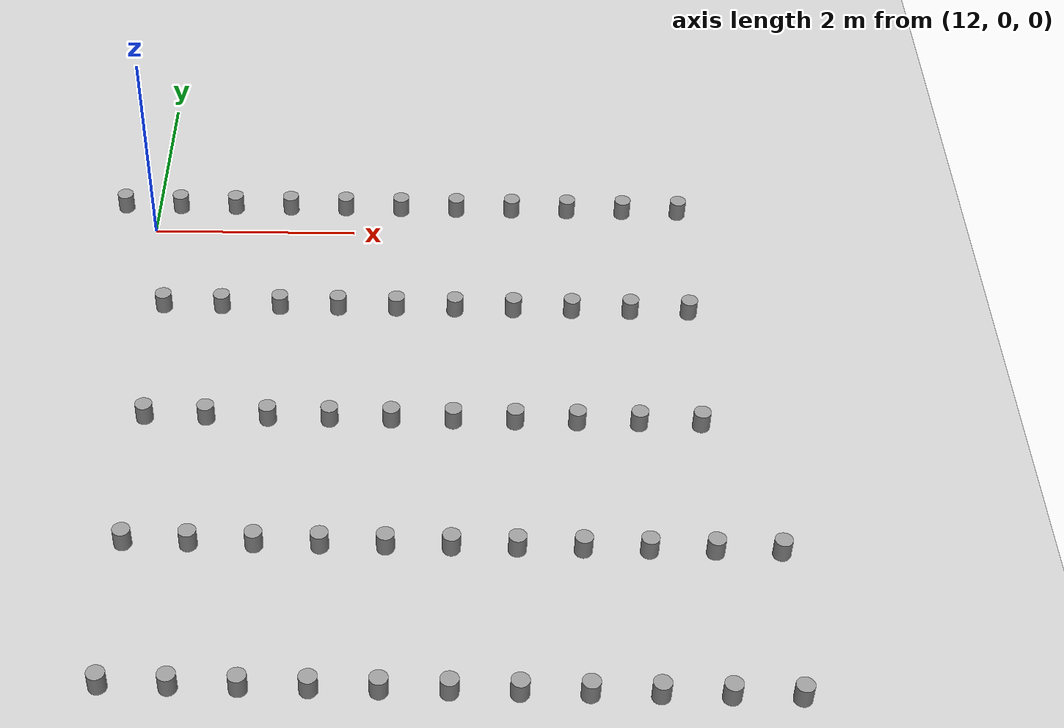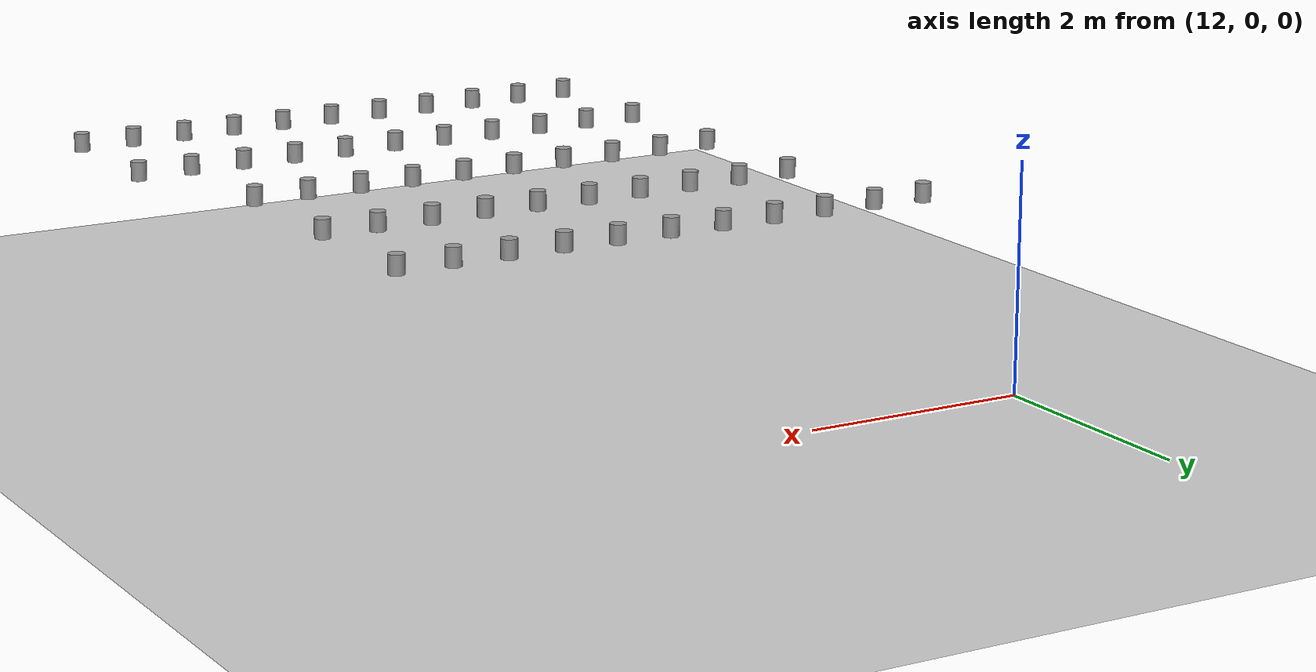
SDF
<sdf version="1.4">
 <world name="default">
  <model name="pot_54">
   <static>1</static>
   <link name="link_0">
    <collision name="collision">
     <geometry><cylinder><length>0.17</length><radius>0.07</radius></cylinder></geometry>
    </collision>
    <visual name="visual">
     <geometry><cylinder><length>0.17</length><radius>0.07</radius></cylinder></geometry>
     <material>
      <script><uri>file://media/materials/scripts/gazebo.material</uri><name>Gazebo/Grey</name></script>
      <emissive>0 0 0 1</emissive>
      <shader type="vertex"><normal_map>__default__</normal_map></shader>
      <specular>0.01 0.01 0.01 1</specular>
      <lighting>1</lighting>
      <ambient>0.1 0.1 0.1 1</ambient>
      <diffuse>0.05 0.05 0.05 1</diffuse>
     </material>
     <cast_shadows>0</cast_shadows>
    </visual>
    <pose>12.024 -1.350 1.467 0.0 0.0 0.0</pose>
   </link>
  </model>
  <model name="pot_55">
   <static>1</static>
   <link name="link_0">
    <collision name="collision">
     <geometry><cylinder><length>0.17</length><radius>0.07</radius></cylinder></geometry>
    </collision>
    <visual name="visual">
     <geometry><cylinder><length>0.17</length><radius>0.07</radius></cylinder></geometry>
     <material>
      <script><uri>file://media/materials/scripts/gazebo.material</uri><name>Gazebo/Grey</name></script>
      <emissive>0 0 0 1</emissive>
      <shader type="vertex"><normal_map>__default__</normal_map></shader>
      <specular>0.01 0.01 0.01 1</specular>
      <lighting>1</lighting>
      <ambient>0.1 0.1 0.1 1</ambient>
      <diffuse>0.05 0.05 0.05 1</diffuse>
     </material>
     <cast_shadows>0</cast_shadows>
    </visual>
    <pose>12.524 -6.750 1.467 0.0 0.0 0.0</pose>
   </link>
  </model>
  <model name="pot_56">
   <static>1</static>
   <link name="link_0">
    <collision name="collision">
     <geometry><cylinder><length>0.17</length><radius>0.07</radius></cylinder></geometry>
    </collision>
    <visual name="visual">
     <geometry><cylinder><length>0.17</length><radius>0.07</radius></cylinder></geometry>
     <material>
      <script><uri>file://media/materials/scripts/gazebo.material</uri><name>Gazebo/Grey</name></script>
      <emissive>0 0 0 1</emissive>
      <shader type="vertex"><normal_map>__default__</normal_map></shader>
      <specular>0.01 0.01 0.01 1</specular>
      <lighting>1</lighting>
      <ambient>0.1 0.1 0.1 1</ambient>
      <diffuse>0.05 0.05 0.05 1</diffuse>
     </material>
     <cast_shadows>0</cast_shadows>
    </visual>
    <pose>12.524 -5.400 1.467 0.0 0.0 0.0</pose>
   </link>
  </model>
  <model name="pot_57">
   <static>1</static>
   <link name="link_0">
    <collision name="collision">
     <geometry><cylinder><length>0.17</length><radius>0.07</radius></cylinder></geometry>
    </collision>
    <visual name="visual">
     <geometry><cylinder><length>0.17</length><radius>0.07</radius></cylinder></geometry>
     <material>
      <script><uri>file://media/materials/scripts/gazebo.material</uri><name>Gazebo/Grey</name></script>
      <emissive>0 0 0 1</emissive>
      <shader type="vertex"><normal_map>__default__</normal_map></shader>
      <specular>0.01 0.01 0.01 1</specular>
      <lighting>1</lighting>
      <ambient>0.1 0.1 0.1 1</ambient>
      <diffuse>0.05 0.05 0.05 1</diffuse>
     </material>
     <cast_shadows>0</cast_shadows>
    </visual>
    <pose>12.524 -4.050 1.467 0.0 0.0 0.0</pose>
   </link>
  </model>
  <model name="pot_58">
   <static>1</static>
   <link name="link_0">
    <collision name="collision">
     <geometry><cylinder><length>0.17</length><radius>0.07</radius></cylinder></geometry>
    </collision>
    <visual name="visual">
     <geometry><cylinder><length>0.17</length><radius>0.07</radius></cylinder></geometry>
     <material>
      <script><uri>file://media/materials/scripts/gazebo.material</uri><name>Gazebo/Grey</name></script>
      <emissive>0 0 0 1</emissive>
      <shader type="vertex"><normal_map>__default__</normal_map></shader>
      <specular>0.01 0.01 0.01 1</specular>
      <lighting>1</lighting>
      <ambient>0.1 0.1 0.1 1</ambient>
      <diffuse>0.05 0.05 0.05 1</diffuse>
     </material>
     <cast_shadows>0</cast_shadows>
    </visual>
    <pose>12.524 -2.700 1.467 0.0 0.0 0.0</pose>
   </link>
  </model>
  <model name="pot_59">
   <static>1</static>
   <link name="link_0">
    <collision name="collision">
     <geometry><cylinder><length>0.17</length><radius>0.07</radius></cylinder></geometry>
    </collision>
    <visual name="visual">
     <geometry><cylinder><length>0.17</length><radius>0.07</radius></cylinder></geometry>
     <material>
      <script><uri>file://media/materials/scripts/gazebo.material</uri><name>Gazebo/Grey</name></script>
      <emissive>0 0 0 1</emissive>
      <shader type="vertex"><normal_map>__default__</normal_map></shader>
      <specular>0.01 0.01 0.01 1</specular>
      <lighting>1</lighting>
      <ambient>0.1 0.1 0.1 1</ambient>
      <diffuse>0.05 0.05 0.05 1</diffuse>
     </material>
     <cast_shadows>0</cast_shadows>
    </visual>
    <pose>12.524 -1.350 1.467 0.0 0.0 0.0</pose>
   </link>
  </model>
  <model name="pot_60">
   <static>1</static>
   <link name="link_0">
    <collision name="collision">
     <geometry><cylinder><length>0.17</length><radius>0.07</radius></cylinder></geometry>
    </collision>
    <visual name="visual">
     <geometry><cylinder><length>0.17</length><radius>0.07</radius></cylinder></geometry>
     <material>
      <script><uri>file://media/materials/scripts/gazebo.material</uri><name>Gazebo/Grey</name></script>
      <emissive>0 0 0 1</emissive>
      <shader type="vertex"><normal_map>__default__</normal_map></shader>
      <specular>0.01 0.01 0.01 1</specular>
      <lighting>1</lighting>
      <ambient>0.1 0.1 0.1 1</ambient>
      <diffuse>0.05 0.05 0.05 1</diffuse>
     </material>
     <cast_shadows>0</cast_shadows>
    </visual>
    <pose>13.024 -6.750 1.467 0.0 0.0 0.0</pose>
   </link>
  </model>
  <model name="pot_61">
   <static>1</static>
   <link name="link_0">
    <collision name="collision">
     <geometry><cylinder><length>0.17</length><radius>0.07</radius></cylinder></geometry>
    </collision>
    <visual name="visual">
     <geometry><cylinder><length>0.17</length><radius>0.07</radius></cylinder></geometry>
     <material>
      <script><uri>file://media/materials/scripts/gazebo.material</uri><name>Gazebo/Grey</name></script>
      <emissive>0 0 0 1</emissive>
      <shader type="vertex"><normal_map>__default__</normal_map></shader>
      <specular>0.01 0.01 0.01 1</specular>
      <lighting>1</lighting>
      <ambient>0.1 0.1 0.1 1</ambient>
      <diffuse>0.05 0.05 0.05 1</diffuse>
     </material>
     <cast_shadows>0</cast_shadows>
    </visual>
    <pose>13.024 -5.400 1.467 0.0 0.0 0.0</pose>
   </link>
  </model>
  <model name="pot_62">
   <static>1</static>
   <link name="link_0">
    <collision name="collision">
     <geometry><cylinder><length>0.17</length><radius>0.07</radius></cylinder></geometry>
    </collision>
    <visual name="visual">
     <geometry><cylinder><length>0.17</length><radius>0.07</radius></cylinder></geometry>
     <material>
      <script><uri>file://media/materials/scripts/gazebo.material</uri><name>Gazebo/Grey</name></script>
      <emissive>0 0 0 1</emissive>
      <shader type="vertex"><normal_map>__default__</normal_map></shader>
      <specular>0.01 0.01 0.01 1</specular>
      <lighting>1</lighting>
      <ambient>0.1 0.1 0.1 1</ambient>
      <diffuse>0.05 0.05 0.05 1</diffuse>
     </material>
     <cast_shadows>0</cast_shadows>
    </visual>
    <pose>13.024 -4.050 1.467 0.0 0.0 0.0</pose>
   </link>
  </model>
  <model name="pot_63">
   <static>1</static>
   <link name="link_0">
    <collision name="collision">
     <geometry><cylinder><length>0.17</length><radius>0.07</radius></cylinder></geometry>
    </collision>
    <visual name="visual">
     <geometry><cylinder><length>0.17</length><radius>0.07</radius></cylinder></geometry>
     <material>
      <script><uri>file://media/materials/scripts/gazebo.material</uri><name>Gazebo/Grey</name></script>
      <emissive>0 0 0 1</emissive>
      <shader type="vertex"><normal_map>__default__</normal_map></shader>
      <specular>0.01 0.01 0.01 1</specular>
      <lighting>1</lighting>
      <ambient>0.1 0.1 0.1 1</ambient>
      <diffuse>0.05 0.05 0.05 1</diffuse>
     </material>
     <cast_shadows>0</cast_shadows>
    </visual>
    <pose>13.024 -2.700 1.467 0.0 0.0 0.0</pose>
   </link>
  </model>
  <model name="pot_64">
   <static>1</static>
   <link name="link_0">
    <collision name="collision">
     <geometry><cylinder><length>0.17</length><radius>0.07</radius></cylinder></geometry>
    </collision>
    <visual name="visual">
     <geometry><cylinder><length>0.17</length><radius>0.07</radius></cylinder></geometry>
     <material>
      <script><uri>file://media/materials/scripts/gazebo.material</uri><name>Gazebo/Grey</name></script>
      <emissive>0 0 0 1</emissive>
      <shader type="vertex"><normal_map>__default__</normal_map></shader>
      <specular>0.01 0.01 0.01 1</specular>
      <lighting>1</lighting>
      <ambient>0.1 0.1 0.1 1</ambient>
      <diffuse>0.05 0.05 0.05 1</diffuse>
     </material>
     <cast_shadows>0</cast_shadows>
    </visual>
    <pose>13.024 -1.350 1.467 0.0 0.0 0.0</pose>
   </link>
  </model>
  <model name="pot_65">
   <static>1</static>
   <link name="link_0">
    <collision name="collision">
     <geometry><cylinder><length>0.17</length><radius>0.07</radius></cylinder></geometry>
    </collision>
    <visual name="visual">
     <geometry><cylinder><length>0.17</length><radius>0.07</radius></cylinder></geometry>
     <material>
      <script><uri>file://media/materials/scripts/gazebo.material</uri><name>Gazebo/Grey</name></script>
      <emissive>0 0 0 1</emissive>
      <shader type="vertex"><normal_map>__default__</normal_map></shader>
      <specular>0.01 0.01 0.01 1</specular>
      <lighting>1</lighting>
      <ambient>0.1 0.1 0.1 1</ambient>
      <diffuse>0.05 0.05 0.05 1</diffuse>
     </material>
     <cast_shadows>0</cast_shadows>
    </visual>
    <pose>13.524 -6.750 1.467 0.0 0.0 0.0</pose>
   </link>
  </model>
  <model name="pot_66">
   <static>1</static>
   <link name="link_0">
    <collision name="collision">
     <geometry><cylinder><length>0.17</length><radius>0.07</radius></cylinder></geometry>
    </collision>
    <visual name="visual">
     <geometry><cylinder><length>0.17</length><radius>0.07</radius></cylinder></geometry>
     <material>
      <script><uri>file://media/materials/scripts/gazebo.material</uri><name>Gazebo/Grey</name></script>
      <emissive>0 0 0 1</emissive>
      <shader type="vertex"><normal_map>__default__</normal_map></shader>
      <specular>0.01 0.01 0.01 1</specular>
      <lighting>1</lighting>
      <ambient>0.1 0.1 0.1 1</ambient>
      <diffuse>0.05 0.05 0.05 1</diffuse>
     </material>
     <cast_shadows>0</cast_shadows>
    </visual>
    <pose>13.524 -5.400 1.467 0.0 0.0 0.0</pose>
   </link>
  </model>
  <model name="pot_67">
   <static>1</static>
   <link name="link_0">
    <collision name="collision">
     <geometry><cylinder><length>0.17</length><radius>0.07</radius></cylinder></geometry>
    </collision>
    <visual name="visual">
     <geometry><cylinder><length>0.17</length><radius>0.07</radius></cylinder></geometry>
     <material>
      <script><uri>file://media/materials/scripts/gazebo.material</uri><name>Gazebo/Grey</name></script>
      <emissive>0 0 0 1</emissive>
      <shader type="vertex"><normal_map>__default__</normal_map></shader>
      <specular>0.01 0.01 0.01 1</specular>
      <lighting>1</lighting>
      <ambient>0.1 0.1 0.1 1</ambient>
      <diffuse>0.05 0.05 0.05 1</diffuse>
     </material>
     <cast_shadows>0</cast_shadows>
    </visual>
    <pose>13.524 -4.050 1.467 0.0 0.0 0.0</pose>
   </link>
  </model>
  <model name="pot_68">
   <static>1</static>
   <link name="link_0">
    <collision name="collision">
     <geometry><cylinder><length>0.17</length><radius>0.07</radius></cylinder></geometry>
    </collision>
    <visual name="visual">
     <geometry><cylinder><length>0.17</length><radius>0.07</radius></cylinder></geometry>
     <material>
      <script><uri>file://media/materials/scripts/gazebo.material</uri><name>Gazebo/Grey</name></script>
      <emissive>0 0 0 1</emissive>
      <shader type="vertex"><normal_map>__default__</normal_map></shader>
      <specular>0.01 0.01 0.01 1</specular>
      <lighting>1</lighting>
      <ambient>0.1 0.1 0.1 1</ambient>
      <diffuse>0.05 0.05 0.05 1</diffuse>
     </material>
     <cast_shadows>0</cast_shadows>
    </visual>
    <pose>13.524 -2.700 1.467 0.0 0.0 0.0</pose>
   </link>
  </model>
  <model name="pot_69">
   <static>1</static>
   <link name="link_0">
    <collision name="collision">
     <geometry><cylinder><length>0.17</length><radius>0.07</radius></cylinder></geometry>
    </collision>
    <visual name="visual">
     <geometry><cylinder><length>0.17</length><radius>0.07</radius></cylinder></geometry>
     <material>
      <script><uri>file://media/materials/scripts/gazebo.material</uri><name>Gazebo/Grey</name></script>
      <emissive>0 0 0 1</emissive>
      <shader type="vertex"><normal_map>__default__</normal_map></shader>
      <specular>0.01 0.01 0.01 1</specular>
      <lighting>1</lighting>
      <ambient>0.1 0.1 0.1 1</ambient>
      <diffuse>0.05 0.05 0.05 1</diffuse>
     </material>
     <cast_shadows>0</cast_shadows>
    </visual>
    <pose>13.524 -1.350 1.467 0.0 0.0 0.0</pose>
   </link>
  </model>
  <model name="pot_70">
   <static>1</static>
   <link name="link_0">
    <collision name="collision">
     <geometry><cylinder><length>0.17</length><radius>0.07</radius></cylinder></geometry>
    </collision>
    <visual name="visual">
     <geometry><cylinder><length>0.17</length><radius>0.07</radius></cylinder></geometry>
     <material>
      <script><uri>file://media/materials/scripts/gazebo.material</uri><name>Gazebo/Grey</name></script>
      <emissive>0 0 0 1</emissive>
      <shader type="vertex"><normal_map>__default__</normal_map></shader>
      <specular>0.01 0.01 0.01 1</specular>
      <lighting>1</lighting>
      <ambient>0.1 0.1 0.1 1</ambient>
      <diffuse>0.05 0.05 0.05 1</diffuse>
     </material>
     <cast_shadows>0</cast_shadows>
    </visual>
    <pose>14.024 -6.750 1.467 0.0 0.0 0.0</pose>
   </link>
  </model>
  <model name="pot_71">
   <static>1</static>
   <link name="link_0">
    <collision name="collision">
     <geometry><cylinder><length>0.17</length><radius>0.07</radius></cylinder></geometry>
    </collision>
    <visual name="visual">
     <geometry><cylinder><length>0.17</length><radius>0.07</radius></cylinder></geometry>
     <material>
      <script><uri>file://media/materials/scripts/gazebo.material</uri><name>Gazebo/Grey</name></script>
      <emissive>0 0 0 1</emissive>
      <shader type="vertex"><normal_map>__default__</normal_map></shader>
      <specular>0.01 0.01 0.01 1</specular>
      <lighting>1</lighting>
      <ambient>0.1 0.1 0.1 1</ambient>
      <diffuse>0.05 0.05 0.05 1</diffuse>
     </material>
     <cast_shadows>0</cast_shadows>
    </visual>
    <pose>14.024 -5.400 1.467 0.0 0.0 0.0</pose>
   </link>
  </model>
  <model name="pot_72">
   <static>1</static>
   <link name="link_0">
    <collision name="collision">
     <geometry><cylinder><length>0.17</length><radius>0.07</radius></cylinder></geometry>
    </collision>
    <visual name="visual">
     <geometry><cylinder><length>0.17</length><radius>0.07</radius></cylinder></geometry>
     <material>
      <script><uri>file://media/materials/scripts/gazebo.material</uri><name>Gazebo/Grey</name></script>
      <emissive>0 0 0 1</emissive>
      <shader type="vertex"><normal_map>__default__</normal_map></shader>
      <specular>0.01 0.01 0.01 1</specular>
      <lighting>1</lighting>
      <ambient>0.1 0.1 0.1 1</ambient>
      <diffuse>0.05 0.05 0.05 1</diffuse>
     </material>
     <cast_shadows>0</cast_shadows>
    </visual>
    <pose>14.024 -4.050 1.467 0.0 0.0 0.0</pose>
   </link>
  </model>
  <model name="pot_73">
   <static>1</static>
   <link name="link_0">
    <collision name="collision">
     <geometry><cylinder><length>0.17</length><radius>0.07</radius></cylinder></geometry>
    </collision>
    <visual name="visual">
     <geometry><cylinder><length>0.17</length><radius>0.07</radius></cylinder></geometry>
     <material>
      <script><uri>file://media/materials/scripts/gazebo.material</uri><name>Gazebo/Grey</name></script>
      <emissive>0 0 0 1</emissive>
      <shader type="vertex"><normal_map>__default__</normal_map></shader>
      <specular>0.01 0.01 0.01 1</specular>
      <lighting>1</lighting>
      <ambient>0.1 0.1 0.1 1</ambient>
      <diffuse>0.05 0.05 0.05 1</diffuse>
     </material>
     <cast_shadows>0</cast_shadows>
    </visual>
    <pose>14.024 -2.700 1.467 0.0 0.0 0.0</pose>
   </link>
  </model>
  <model name="pot_74">
   <static>1</static>
   <link name="link_0">
    <collision name="collision">
     <geometry><cylinder><length>0.17</length><radius>0.07</radius></cylinder></geometry>
    </collision>
    <visual name="visual">
     <geometry><cylinder><length>0.17</length><radius>0.07</radius></cylinder></geometry>
     <material>
      <script><uri>file://media/materials/scripts/gazebo.material</uri><name>Gazebo/Grey</name></script>
      <emissive>0 0 0 1</emissive>
      <shader type="vertex"><normal_map>__default__</normal_map></shader>
      <specular>0.01 0.01 0.01 1</specular>
      <lighting>1</lighting>
      <ambient>0.1 0.1 0.1 1</ambient>
      <diffuse>0.05 0.05 0.05 1</diffuse>
     </material>
     <cast_shadows>0</cast_shadows>
    </visual>
    <pose>14.024 -1.350 1.467 0.0 0.0 0.0</pose>
   </link>
  </model>
  <model name="pot_75">
   <static>1</static>
   <link name="link_0">
    <collision name="collision">
     <geometry><cylinder><length>0.17</length><radius>0.07</radius></cylinder></geometry>
    </collision>
    <visual name="visual">
     <geometry><cylinder><length>0.17</length><radius>0.07</radius></cylinder></geometry>
     <material>
      <script><uri>file://media/materials/scripts/gazebo.material</uri><name>Gazebo/Grey</name></script>
      <emissive>0 0 0 1</emissive>
      <shader type="vertex"><normal_map>__default__</normal_map></shader>
      <specular>0.01 0.01 0.01 1</specular>
      <lighting>1</lighting>
      <ambient>0.1 0.1 0.1 1</ambient>
      <diffuse>0.05 0.05 0.05 1</diffuse>
     </material>
     <cast_shadows>0</cast_shadows>
    </visual>
    <pose>14.524 -6.750 1.467 0.0 0.0 0.0</pose>
   </link>
  </model>
  <model name="pot_76">
   <static>1</static>
   <link name="link_0">
    <collision name="collision">
     <geometry><cylinder><length>0.17</length><radius>0.07</radius></cylinder></geometry>
    </collision>
    <visual name="visual">
     <geometry><cylinder><length>0.17</length><radius>0.07</radius></cylinder></geometry>
     <material>
      <script><uri>file://media/materials/scripts/gazebo.material</uri><name>Gazebo/Grey</name></script>
      <emissive>0 0 0 1</emissive>
      <shader type="vertex"><normal_map>__default__</normal_map></shader>
      <specular>0.01 0.01 0.01 1</specular>
      <lighting>1</lighting>
      <ambient>0.1 0.1 0.1 1</ambient>
      <diffuse>0.05 0.05 0.05 1</diffuse>
     </material>
     <cast_shadows>0</cast_shadows>
    </visual>
    <pose>14.524 -5.400 1.467 0.0 0.0 0.0</pose>
   </link>
  </model>
  <model name="pot_77">
   <static>1</static>
   <link name="link_0">
    <collision name="collision">
     <geometry><cylinder><length>0.17</length><radius>0.07</radius></cylinder></geometry>
    </collision>
    <visual name="visual">
     <geometry><cylinder><length>0.17</length><radius>0.07</radius></cylinder></geometry>
     <material>
      <script><uri>file://media/materials/scripts/gazebo.material</uri><name>Gazebo/Grey</name></script>
      <emissive>0 0 0 1</emissive>
      <shader type="vertex"><normal_map>__default__</normal_map></shader>
      <specular>0.01 0.01 0.01 1</specular>
      <lighting>1</lighting>
      <ambient>0.1 0.1 0.1 1</ambient>
      <diffuse>0.05 0.05 0.05 1</diffuse>
     </material>
     <cast_shadows>0</cast_shadows>
    </visual>
    <pose>14.524 -4.050 1.467 0.0 0.0 0.0</pose>
   </link>
  </model>
  <model name="pot_78">
   <static>1</static>
   <link name="link_0">
    <collision name="collision">
     <geometry><cylinder><length>0.17</length><radius>0.07</radius></cylinder></geometry>
    </collision>
    <visual name="visual">
     <geometry><cylinder><length>0.17</length><radius>0.07</radius></cylinder></geometry>
     <material>
      <script><uri>file://media/materials/scripts/gazebo.material</uri><name>Gazebo/Grey</name></script>
      <emissive>0 0 0 1</emissive>
      <shader type="vertex"><normal_map>__default__</normal_map></shader>
      <specular>0.01 0.01 0.01 1</specular>
      <lighting>1</lighting>
      <ambient>0.1 0.1 0.1 1</ambient>
      <diffuse>0.05 0.05 0.05 1</diffuse>
     </material>
     <cast_shadows>0</cast_shadows>
    </visual>
    <pose>14.524 -2.700 1.467 0.0 0.0 0.0</pose>
   </link>
  </model>
  <model name="pot_79">
   <static>1</static>
   <link name="link_0">
    <collision name="collision">
     <geometry><cylinder><length>0.17</length><radius>0.07</radius></cylinder></geometry>
    </collision>
    <visual name="visual">
     <geometry><cylinder><length>0.17</length><radius>0.07</radius></cylinder></geometry>
     <material>
      <script><uri>file://media/materials/scripts/gazebo.material</uri><name>Gazebo/Grey</name></script>
      <emissive>0 0 0 1</emissive>
      <shader type="vertex"><normal_map>__default__</normal_map></shader>
      <specular>0.01 0.01 0.01 1</specular>
      <lighting>1</lighting>
      <ambient>0.1 0.1 0.1 1</ambient>
      <diffuse>0.05 0.05 0.05 1</diffuse>
     </material>
     <cast_shadows>0</cast_shadows>
    </visual>
    <pose>14.524 -1.350 1.467 0.0 0.0 0.0</pose>
   </link>
  </model>
  <model name="pot_80">
   <static>1</static>
   <link name="link_0">
    <collision name="collision">
     <geometry><cylinder><length>0.17</length><radius>0.07</radius></cylinder></geometry>
    </collision>
    <visual name="visual">
     <geometry><cylinder><length>0.17</length><radius>0.07</radius></cylinder></geometry>
     <material>
      <script><uri>file://media/materials/scripts/gazebo.material</uri><name>Gazebo/Grey</name></script>
      <emissive>0 0 0 1</emissive>
      <shader type="vertex"><normal_map>__default__</normal_map></shader>
      <specular>0.01 0.01 0.01 1</specular>
      <lighting>1</lighting>
      <ambient>0.1 0.1 0.1 1</ambient>
      <diffuse>0.05 0.05 0.05 1</diffuse>
     </material>
     <cast_shadows>0</cast_shadows>
    </visual>
    <pose>15.024 -6.750 1.467 0.0 0.0 0.0</pose>
   </link>
  </model>
  <model name="pot_81">
   <static>1</static>
   <link name="link_0">
    <collision name="collision">
     <geometry><cylinder><length>0.17</length><radius>0.07</radius></cylinder></geometry>
    </collision>
    <visual name="visual">
     <geometry><cylinder><length>0.17</length><radius>0.07</radius></cylinder></geometry>
     <material>
      <script><uri>file://media/materials/scripts/gazebo.material</uri><name>Gazebo/Grey</name></script>
      <emissive>0 0 0 1</emissive>
      <shader type="vertex"><normal_map>__default__</normal_map></shader>
      <specular>0.01 0.01 0.01 1</specular>
      <lighting>1</lighting>
      <ambient>0.1 0.1 0.1 1</ambient>
      <diffuse>0.05 0.05 0.05 1</diffuse>
     </material>
     <cast_shadows>0</cast_shadows>
    </visual>
    <pose>15.024 -5.400 1.467 0.0 0.0 0.0</pose>
   </link>
  </model>
  <model name="pot_82">
   <static>1</static>
   <link name="link_0">
    <collision name="collision">
     <geometry><cylinder><length>0.17</length><radius>0.07</radius></cylinder></geometry>
    </collision>
    <visual name="visual">
     <geometry><cylinder><length>0.17</length><radius>0.07</radius></cylinder></geometry>
     <material>
      <script><uri>file://media/materials/scripts/gazebo.material</uri><name>Gazebo/Grey</name></script>
      <emissive>0 0 0 1</emissive>
      <shader type="vertex"><normal_map>__default__</normal_map></shader>
      <specular>0.01 0.01 0.01 1</specular>
      <lighting>1</lighting>
      <ambient>0.1 0.1 0.1 1</ambient>
      <diffuse>0.05 0.05 0.05 1</diffuse>
     </material>
     <cast_shadows>0</cast_shadows>
    </visual>
    <pose>15.024 -4.050 1.467 0.0 0.0 0.0</pose>
   </link>
  </model>
  <model name="pot_83">
   <static>1</static>
   <link name="link_0">
    <collision name="collision">
     <geometry><cylinder><length>0.17</length><radius>0.07</radius></cylinder></geometry>
    </collision>
    <visual name="visual">
     <geometry><cylinder><length>0.17</length><radius>0.07</radius></cylinder></geometry>
     <material>
      <script><uri>file://media/materials/scripts/gazebo.material</uri><name>Gazebo/Grey</name></script>
      <emissive>0 0 0 1</emissive>
      <shader type="vertex"><normal_map>__default__</normal_map></shader>
      <specular>0.01 0.01 0.01 1</specular>
      <lighting>1</lighting>
      <ambient>0.1 0.1 0.1 1</ambient>
      <diffuse>0.05 0.05 0.05 1</diffuse>
     </material>
     <cast_shadows>0</cast_shadows>
    </visual>
    <pose>15.024 -2.700 1.467 0.0 0.0 0.0</pose>
   </link>
  </model>
  <model name="pot_84">
   <static>1</static>
   <link name="link_0">
    <collision name="collision">
     <geometry><cylinder><length>0.17</length><radius>0.07</radius></cylinder></geometry>
    </collision>
    <visual name="visual">
     <geometry><cylinder><length>0.17</length><radius>0.07</radius></cylinder></geometry>
     <material>
      <script><uri>file://media/materials/scripts/gazebo.material</uri><name>Gazebo/Grey</name></script>
      <emissive>0 0 0 1</emissive>
      <shader type="vertex"><normal_map>__default__</normal_map></shader>
      <specular>0.01 0.01 0.01 1</specular>
      <lighting>1</lighting>
      <ambient>0.1 0.1 0.1 1</ambient>
      <diffuse>0.05 0.05 0.05 1</diffuse>
     </material>
     <cast_shadows>0</cast_shadows>
    </visual>
    <pose>15.024 -1.350 1.467 0.0 0.0 0.0</pose>
   </link>
  </model>
  <model name="pot_85">
   <static>1</static>
   <link name="link_0">
    <collision name="collision">
     <geometry><cylinder><length>0.17</length><radius>0.07</radius></cylinder></geometry>
    </collision>
    <visual name="visual">
     <geometry><cylinder><length>0.17</length><radius>0.07</radius></cylinder></geometry>
     <material>
      <script><uri>file://media/materials/scripts/gazebo.material</uri><name>Gazebo/Grey</name></script>
      <emissive>0 0 0 1</emissive>
      <shader type="vertex"><normal_map>__default__</normal_map></shader>
      <specular>0.01 0.01 0.01 1</specular>
      <lighting>1</lighting>
      <ambient>0.1 0.1 0.1 1</ambient>
      <diffuse>0.05 0.05 0.05 1</diffuse>
     </material>
     <cast_shadows>0</cast_shadows>
    </visual>
    <pose>15.524 -6.750 1.467 0.0 0.0 0.0</pose>
   </link>
  </model>
  <model name="pot_86">
   <static>1</static>
   <link name="link_0">
    <collision name="collision">
     <geometry><cylinder><length>0.17</length><radius>0.07</radius></cylinder></geometry>
    </collision>
    <visual name="visual">
     <geometry><cylinder><length>0.17</length><radius>0.07</radius></cylinder></geometry>
     <material>
      <script><uri>file://media/materials/scripts/gazebo.material</uri><name>Gazebo/Grey</name></script>
      <emissive>0 0 0 1</emissive>
      <shader type="vertex"><normal_map>__default__</normal_map></shader>
      <specular>0.01 0.01 0.01 1</specular>
      <lighting>1</lighting>
      <ambient>0.1 0.1 0.1 1</ambient>
      <diffuse>0.05 0.05 0.05 1</diffuse>
     </material>
     <cast_shadows>0</cast_shadows>
    </visual>
    <pose>15.524 -5.400 1.467 0.0 0.0 0.0</pose>
   </link>
  </model>
  <model name="pot_87">
   <static>1</static>
   <link name="link_0">
    <collision name="collision">
     <geometry><cylinder><length>0.17</length><radius>0.07</radius></cylinder></geometry>
    </collision>
    <visual name="visual">
     <geometry><cylinder><length>0.17</length><radius>0.07</radius></cylinder></geometry>
     <material>
      <script><uri>file://media/materials/scripts/gazebo.material</uri><name>Gazebo/Grey</name></script>
      <emissive>0 0 0 1</emissive>
      <shader type="vertex"><normal_map>__default__</normal_map></shader>
      <specular>0.01 0.01 0.01 1</specular>
      <lighting>1</lighting>
      <ambient>0.1 0.1 0.1 1</ambient>
      <diffuse>0.05 0.05 0.05 1</diffuse>
     </material>
     <cast_shadows>0</cast_shadows>
    </visual>
    <pose>15.524 -4.050 1.467 0.0 0.0 0.0</pose>
   </link>
  </model>
  <model name="pot_88">
   <static>1</static>
   <link name="link_0">
    <collision name="collision">
     <geometry><cylinder><length>0.17</length><radius>0.07</radius></cylinder></geometry>
    </collision>
    <visual name="visual">
     <geometry><cylinder><length>0.17</length><radius>0.07</radius></cylinder></geometry>
     <material>
      <script><uri>file://media/materials/scripts/gazebo.material</uri><name>Gazebo/Grey</name></script>
      <emissive>0 0 0 1</emissive>
      <shader type="vertex"><normal_map>__default__</normal_map></shader>
      <specular>0.01 0.01 0.01 1</specular>
      <lighting>1</lighting>
      <ambient>0.1 0.1 0.1 1</ambient>
      <diffuse>0.05 0.05 0.05 1</diffuse>
     </material>
     <cast_shadows>0</cast_shadows>
    </visual>
    <pose>15.524 -2.700 1.467 0.0 0.0 0.0</pose>
   </link>
  </model>
  <model name="pot_89">
   <static>1</static>
   <link name="link_0">
    <collision name="collision">
     <geometry><cylinder><length>0.17</length><radius>0.07</radius></cylinder></geometry>
    </collision>
    <visual name="visual">
     <geometry><cylinder><length>0.17</length><radius>0.07</radius></cylinder></geometry>
     <material>
      <script><uri>file://media/materials/scripts/gazebo.material</uri><name>Gazebo/Grey</name></script>
      <emissive>0 0 0 1</emissive>
      <shader type="vertex"><normal_map>__default__</normal_map></shader>
      <specular>0.01 0.01 0.01 1</specular>
      <lighting>1</lighting>
      <ambient>0.1 0.1 0.1 1</ambient>
      <diffuse>0.05 0.05 0.05 1</diffuse>
     </material>
     <cast_shadows>0</cast_shadows>
    </visual>
    <pose>15.524 -1.350 1.467 0.0 0.0 0.0</pose>
   </link>
  </model>
  <model name="pot_90">
   <static>1</static>
   <link name="link_0">
    <collision name="collision">
     <geometry><cylinder><length>0.17</length><radius>0.07</radius></cylinder></geometry>
    </collision>
    <visual name="visual">
     <geometry><cylinder><length>0.17</length><radius>0.07</radius></cylinder></geometry>
     <material>
      <script><uri>file://media/materials/scripts/gazebo.material</uri><name>Gazebo/Grey</name></script>
      <emissive>0 0 0 1</emissive>
      <shader type="vertex"><normal_map>__default__</normal_map></shader>
      <specular>0.01 0.01 0.01 1</specular>
      <lighting>1</lighting>
      <ambient>0.1 0.1 0.1 1</ambient>
      <diffuse>0.05 0.05 0.05 1</diffuse>
     </material>
     <cast_shadows>0</cast_shadows>
    </visual>
    <pose>16.024 -6.750 1.467 0.0 0.0 0.0</pose>
   </link>
  </model>
  <model name="pot_91">
   <static>1</static>
   <link name="link_0">
    <collision name="collision">
     <geometry><cylinder><length>0.17</length><radius>0.07</radius></cylinder></geometry>
    </collision>
    <visual name="visual">
     <geometry><cylinder><length>0.17</length><radius>0.07</radius></cylinder></geometry>
     <material>
      <script><uri>file://media/materials/scripts/gazebo.material</uri><name>Gazebo/Grey</name></script>
      <emissive>0 0 0 1</emissive>
      <shader type="vertex"><normal_map>__default__</normal_map></shader>
      <specular>0.01 0.01 0.01 1</specular>
      <lighting>1</lighting>
      <ambient>0.1 0.1 0.1 1</ambient>
      <diffuse>0.05 0.05 0.05 1</diffuse>
     </material>
     <cast_shadows>0</cast_shadows>
    </visual>
    <pose>16.024 -5.400 1.467 0.0 0.0 0.0</pose>
   </link>
  </model>
  <model name="pot_92">
   <static>1</static>
   <link name="link_0">
    <collision name="collision">
     <geometry><cylinder><length>0.17</length><radius>0.07</radius></cylinder></geometry>
    </collision>
    <visual name="visual">
     <geometry><cylinder><length>0.17</length><radius>0.07</radius></cylinder></geometry>
     <material>
      <script><uri>file://media/materials/scripts/gazebo.material</uri><name>Gazebo/Grey</name></script>
      <emissive>0 0 0 1</emissive>
      <shader type="vertex"><normal_map>__default__</normal_map></shader>
      <specular>0.01 0.01 0.01 1</specular>
      <lighting>1</lighting>
      <ambient>0.1 0.1 0.1 1</ambient>
      <diffuse>0.05 0.05 0.05 1</diffuse>
     </material>
     <cast_shadows>0</cast_shadows>
    </visual>
    <pose>16.024 -4.050 1.467 0.0 0.0 0.0</pose>
   </link>
  </model>
  <model name="pot_93">
   <static>1</static>
   <link name="link_0">
    <collision name="collision">
     <geometry><cylinder><length>0.17</length><radius>0.07</radius></cylinder></geometry>
    </collision>
    <visual name="visual">
     <geometry><cylinder><length>0.17</length><radius>0.07</radius></cylinder></geometry>
     <material>
      <script><uri>file://media/materials/scripts/gazebo.material</uri><name>Gazebo/Grey</name></script>
      <emissive>0 0 0 1</emissive>
      <shader type="vertex"><normal_map>__default__</normal_map></shader>
      <specular>0.01 0.01 0.01 1</specular>
      <lighting>1</lighting>
      <ambient>0.1 0.1 0.1 1</ambient>
      <diffuse>0.05 0.05 0.05 1</diffuse>
     </material>
     <cast_shadows>0</cast_shadows>
    </visual>
    <pose>16.024 -2.700 1.467 0.0 0.0 0.0</pose>
   </link>
  </model>
  <model name="pot_94">
   <static>1</static>
   <link name="link_0">
    <collision name="collision">
     <geometry><cylinder><length>0.17</length><radius>0.07</radius></cylinder></geometry>
    </collision>
    <visual name="visual">
     <geometry><cylinder><length>0.17</length><radius>0.07</radius></cylinder></geometry>
     <material>
      <script><uri>file://media/materials/scripts/gazebo.material</uri><name>Gazebo/Grey</name></script>
      <emissive>0 0 0 1</emissive>
      <shader type="vertex"><normal_map>__default__</normal_map></shader>
      <specular>0.01 0.01 0.01 1</specular>
      <lighting>1</lighting>
      <ambient>0.1 0.1 0.1 1</ambient>
      <diffuse>0.05 0.05 0.05 1</diffuse>
     </material>
     <cast_shadows>0</cast_shadows>
    </visual>
    <pose>16.024 -1.350 1.467 0.0 0.0 0.0</pose>
   </link>
  </model>
  <model name="pot_95">
   <static>1</static>
   <link name="link_0">
    <collision name="collision">
     <geometry><cylinder><length>0.17</length><radius>0.07</radius></cylinder></geometry>
    </collision>
    <visual name="visual">
     <geometry><cylinder><length>0.17</length><radius>0.07</radius></cylinder></geometry>
     <material>
      <script><uri>file://media/materials/scripts/gazebo.material</uri><name>Gazebo/Grey</name></script>
      <emissive>0 0 0 1</emissive>
      <shader type="vertex"><normal_map>__default__</normal_map></shader>
      <specular>0.01 0.01 0.01 1</specular>
      <lighting>1</lighting>
      <ambient>0.1 0.1 0.1 1</ambient>
      <diffuse>0.05 0.05 0.05 1</diffuse>
     </material>
     <cast_shadows>0</cast_shadows>
    </visual>
    <pose>16.524 -6.750 1.467 0.0 0.0 0.0</pose>
   </link>
  </model>
  <model name="pot_96">
   <static>1</static>
   <link name="link_0">
    <collision name="collision">
     <geometry><cylinder><length>0.17</length><radius>0.07</radius></cylinder></geometry>
    </collision>
    <visual name="visual">
     <geometry><cylinder><length>0.17</length><radius>0.07</radius></cylinder></geometry>
     <material>
      <script><uri>file://media/materials/scripts/gazebo.material</uri><name>Gazebo/Grey</name></script>
      <emissive>0 0 0 1</emissive>
      <shader type="vertex"><normal_map>__default__</normal_map></shader>
      <specular>0.01 0.01 0.01 1</specular>
      <lighting>1</lighting>
      <ambient>0.1 0.1 0.1 1</ambient>
      <diffuse>0.05 0.05 0.05 1</diffuse>
     </material>
     <cast_shadows>0</cast_shadows>
    </visual>
    <pose>16.524 -5.400 1.467 0.0 0.0 0.0</pose>
   </link>
  </model>
  <model name="pot_97">
   <static>1</static>
   <link name="link_0">
    <collision name="collision">
     <geometry><cylinder><length>0.17</length><radius>0.07</radius></cylinder></geometry>
    </collision>
    <visual name="visual">
     <geometry><cylinder><length>0.17</length><radius>0.07</radius></cylinder></geometry>
     <material>
      <script><uri>file://media/materials/scripts/gazebo.material</uri><name>Gazebo/Grey</name></script>
      <emissive>0 0 0 1</emissive>
      <shader type="vertex"><normal_map>__default__</normal_map></shader>
      <specular>0.01 0.01 0.01 1</specular>
      <lighting>1</lighting>
      <ambient>0.1 0.1 0.1 1</ambient>
      <diffuse>0.05 0.05 0.05 1</diffuse>
     </material>
     <cast_shadows>0</cast_shadows>
    </visual>
    <pose>16.524 -4.050 1.467 0.0 0.0 0.0</pose>
   </link>
  </model>
  <model name="pot_98">
   <static>1</static>
   <link name="link_0">
    <collision name="collision">
     <geometry><cylinder><length>0.17</length><radius>0.07</radius></cylinder></geometry>
    </collision>
    <visual name="visual">
     <geometry><cylinder><length>0.17</length><radius>0.07</radius></cylinder></geometry>
     <material>
      <script><uri>file://media/materials/scripts/gazebo.material</uri><name>Gazebo/Grey</name></script>
      <emissive>0 0 0 1</emissive>
      <shader type="vertex"><normal_map>__default__</normal_map></shader>
      <specular>0.01 0.01 0.01 1</specular>
      <lighting>1</lighting>
      <ambient>0.1 0.1 0.1 1</ambient>
      <diffuse>0.05 0.05 0.05 1</diffuse>
     </material>
     <cast_shadows>0</cast_shadows>
    </visual>
    <pose>16.524 -2.700 1.467 0.0 0.0 0.0</pose>
   </link>
  </model>
  <model name="pot_99">
   <static>1</static>
   <link name="link_0">
    <collision name="collision">
     <geometry><cylinder><length>0.17</length><radius>0.07</radius></cylinder></geometry>
    </collision>
    <visual name="visual">
     <geometry><cylinder><length>0.17</length><radius>0.07</radius></cylinder></geometry>
     <material>
      <script><uri>file://media/materials/scripts/gazebo.material</uri><name>Gazebo/Grey</name></script>
      <emissive>0 0 0 1</emissive>
      <shader type="vertex"><normal_map>__default__</normal_map></shader>
      <specular>0.01 0.01 0.01 1</specular>
      <lighting>1</lighting>
      <ambient>0.1 0.1 0.1 1</ambient>
      <diffuse>0.05 0.05 0.05 1</diffuse>
     </material>
     <cast_shadows>0</cast_shadows>
    </visual>
    <pose>16.524 -1.350 1.467 0.0 0.0 0.0</pose>
   </link>
  </model>
  <model name="pot_100">
   <static>1</static>
   <link name="link_0">
    <collision name="collision">
     <geometry><cylinder><length>0.17</length><radius>0.07</radius></cylinder></geometry>
    </collision>
    <visual name="visual">
     <geometry><cylinder><length>0.17</length><radius>0.07</radius></cylinder></geometry>
     <material>
      <script><uri>file://media/materials/scripts/gazebo.material</uri><name>Gazebo/Grey</name></script>
      <emissive>0 0 0 1</emissive>
      <shader type="vertex"><normal_map>__default__</normal_map></shader>
      <specular>0.01 0.01 0.01 1</specular>
      <lighting>1</lighting>
      <ambient>0.1 0.1 0.1 1</ambient>
      <diffuse>0.05 0.05 0.05 1</diffuse>
     </material>
     <cast_shadows>0</cast_shadows>
    </visual>
    <pose>17.024 -6.750 1.467 0.0 0.0 0.0</pose>
   </link>
  </model>
  <model name="pot_101">
   <static>1</static>
   <link name="link_0">
    <collision name="collision">
     <geometry><cylinder><length>0.17</length><radius>0.07</radius></cylinder></geometry>
    </collision>
    <visual name="visual">
     <geometry><cylinder><length>0.17</length><radius>0.07</radius></cylinder></geometry>
     <material>
      <script><uri>file://media/materials/scripts/gazebo.material</uri><name>Gazebo/Grey</name></script>
      <emissive>0 0 0 1</emissive>
      <shader type="vertex"><normal_map>__default__</normal_map></shader>
      <specular>0.01 0.01 0.01 1</specular>
      <lighting>1</lighting>
      <ambient>0.1 0.1 0.1 1</ambient>
      <diffuse>0.05 0.05 0.05 1</diffuse>
     </material>
     <cast_shadows>0</cast_shadows>
    </visual>
    <pose>17.024 -5.400 1.467 0.0 0.0 0.0</pose>
   </link>
  </model>
  <model name="pot_102">
   <static>1</static>
   <link name="link_0">
    <collision name="collision">
     <geometry><cylinder><length>0.17</length><radius>0.07</radius></cylinder></geometry>
    </collision>
    <visual name="visual">
     <geometry><cylinder><length>0.17</length><radius>0.07</radius></cylinder></geometry>
     <material>
      <script><uri>file://media/materials/scripts/gazebo.material</uri><name>Gazebo/Grey</name></script>
      <emissive>0 0 0 1</emissive>
      <shader type="vertex"><normal_map>__default__</normal_map></shader>
      <specular>0.01 0.01 0.01 1</specular>
      <lighting>1</lighting>
      <ambient>0.1 0.1 0.1 1</ambient>
      <diffuse>0.05 0.05 0.05 1</diffuse>
     </material>
     <cast_shadows>0</cast_shadows>
    </visual>
    <pose>17.024 -4.050 1.467 0.0 0.0 0.0</pose>
   </link>
  </model>
  <model name="pot_103">
   <static>1</static>
   <link name="link_0">
    <collision name="collision">
     <geometry><cylinder><length>0.17</length><radius>0.07</radius></cylinder></geometry>
    </collision>
    <visual name="visual">
     <geometry><cylinder><length>0.17</length><radius>0.07</radius></cylinder></geometry>
     <material>
      <script><uri>file://media/materials/scripts/gazebo.material</uri><name>Gazebo/Grey</name></script>
      <emissive>0 0 0 1</emissive>
      <shader type="vertex"><normal_map>__default__</normal_map></shader>
      <specular>0.01 0.01 0.01 1</specular>
      <lighting>1</lighting>
      <ambient>0.1 0.1 0.1 1</ambient>
      <diffuse>0.05 0.05 0.05 1</diffuse>
     </material>
     <cast_shadows>0</cast_shadows>
    </visual>
    <pose>17.024 -2.700 1.467 0.0 0.0 0.0</pose>
   </link>
  </model>
  <model name="pot_104">
   <static>1</static>
   <link name="link_0">
    <collision name="collision">
     <geometry><cylinder><length>0.17</length><radius>0.07</radius></cylinder></geometry>
    </collision>
    <visual name="visual">
     <geometry><cylinder><length>0.17</length><radius>0.07</radius></cylinder></geometry>
     <material>
      <script><uri>file://media/materials/scripts/gazebo.material</uri><name>Gazebo/Grey</name></script>
      <emissive>0 0 0 1</emissive>
      <shader type="vertex"><normal_map>__default__</normal_map></shader>
      <specular>0.01 0.01 0.01 1</specular>
      <lighting>1</lighting>
      <ambient>0.1 0.1 0.1 1</ambient>
      <diffuse>0.05 0.05 0.05 1</diffuse>
     </material>
     <cast_shadows>0</cast_shadows>
    </visual>
    <pose>17.024 -1.350 1.467 0.0 0.0 0.0</pose>
   </link>
  </model>
  <model name="pot_105">
   <static>1</static>
   <link name="link_0">
    <collision name="collision">
     <geometry><cylinder><length>0.17</length><radius>0.07</radius></cylinder></geometry>
    </collision>
    <visual name="visual">
     <geometry><cylinder><length>0.17</length><radius>0.07</radius></cylinder></geometry>
     <material>
      <script><uri>file://media/materials/scripts/gazebo.material</uri><name>Gazebo/Grey</name></script>
      <emissive>0 0 0 1</emissive>
      <shader type="vertex"><normal_map>__default__</normal_map></shader>
      <specular>0.01 0.01 0.01 1</specular>
      <lighting>1</lighting>
      <ambient>0.1 0.1 0.1 1</ambient>
      <diffuse>0.05 0.05 0.05 1</diffuse>
     </material>
     <cast_shadows>0</cast_shadows>
    </visual>
    <pose>17.524 -6.750 1.467 0.0 0.0 0.0</pose>
   </link>
  </model>
  <model name="pot_106">
   <static>1</static>
   <link name="link_0">
    <collision name="collision">
     <geometry><cylinder><length>0.17</length><radius>0.07</radius></cylinder></geometry>
    </collision>
    <visual name="visual">
     <geometry><cylinder><length>0.17</length><radius>0.07</radius></cylinder></geometry>
     <material>
      <script><uri>file://media/materials/scripts/gazebo.material</uri><name>Gazebo/Grey</name></script>
      <emissive>0 0 0 1</emissive>
      <shader type="vertex"><normal_map>__default__</normal_map></shader>
      <specular>0.01 0.01 0.01 1</specular>
      <lighting>1</lighting>
      <ambient>0.1 0.1 0.1 1</ambient>
      <diffuse>0.05 0.05 0.05 1</diffuse>
     </material>
     <cast_shadows>0</cast_shadows>
    </visual>
    <pose>17.524 -5.400 1.467 0.0 0.0 0.0</pose>
   </link>
  </model>
  <include><uri>model://sun</uri></include>
  <include><uri>model://ground_plane</uri></include>
 </world>
</sdf>
